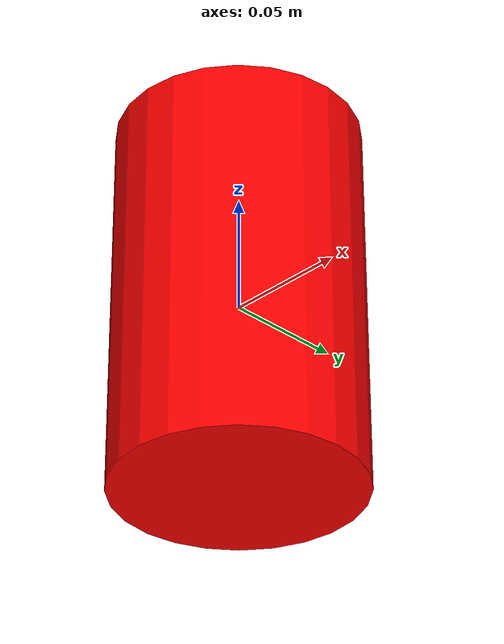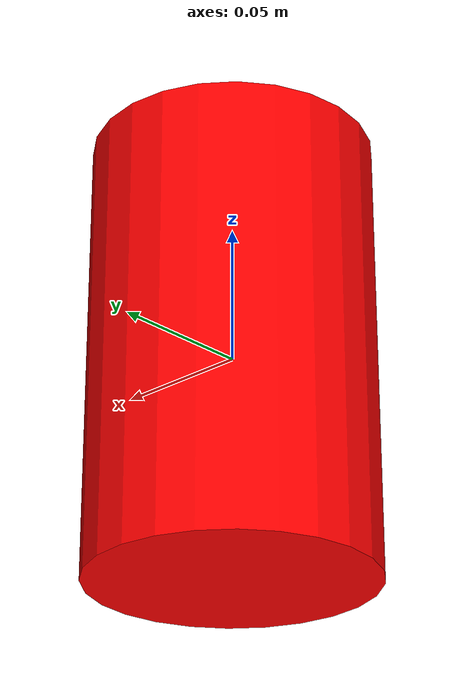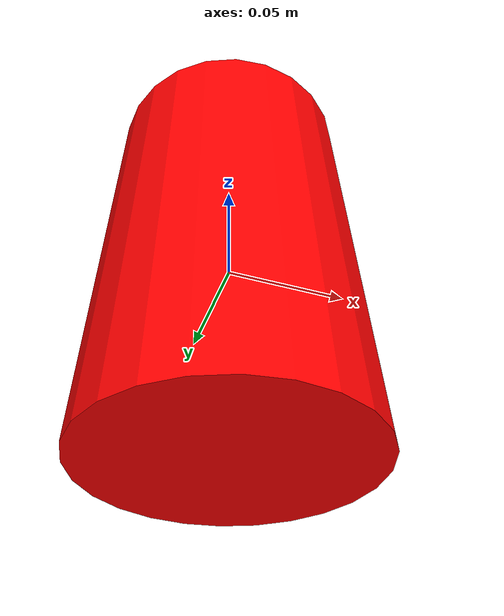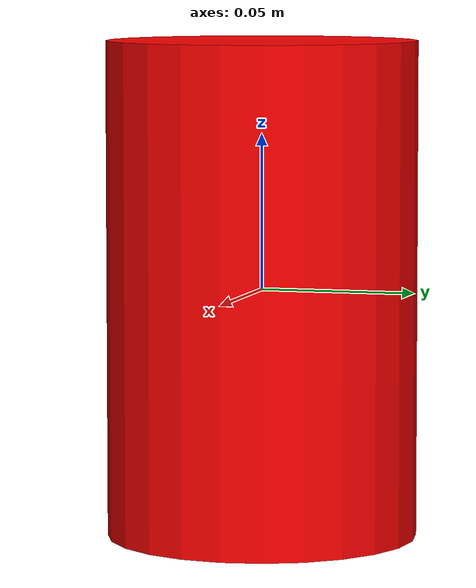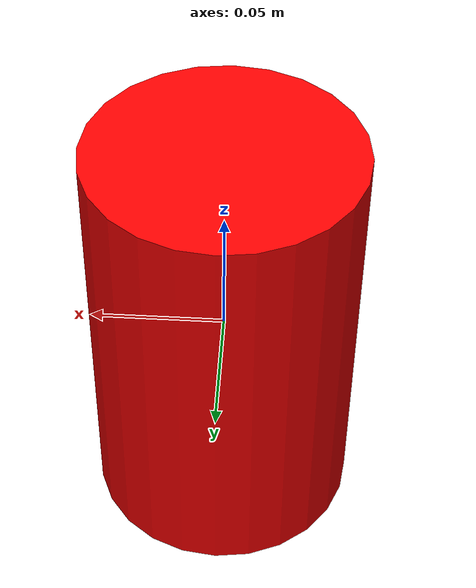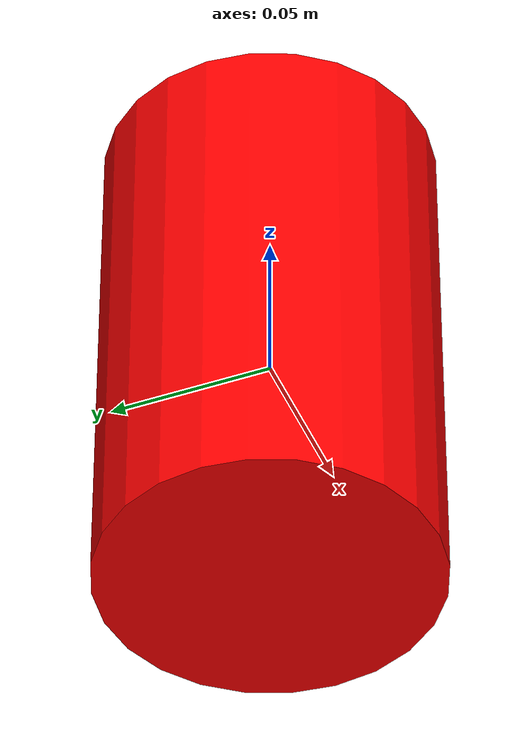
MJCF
<mujoco model="cylinder">
    <worldbody>
        <body name="collision">
            <!-- Size = Radius, Half-height -->
            <geom pos="0 0 0" size="0.05 0.08" type="cylinder" rgba="1 0 0 1"/>
        </body>
        <body name="visual">
            <geom pos="0 0 0" size="0.05 0.08" type="cylinder" rgba="1 0 0 1" conaffinity="0" contype="0" mass="0.0001" group="1"/>
            <geom pos="0 0 0" size="0.05 0.08" type="cylinder" rgba="1 0 0 1" conaffinity="0" contype="0" mass="0.0001" group="0"/>
        </body>
        <!-- These sites are for stacking objects, for aligning objects on a table for example. -->
        <site rgba="0 0 0 0" size="0.005" pos="0 0 -0.08" name="bottom_site"/>
        <site rgba="0 0 0 0" size="0.005" pos="0 0 0.08" name="top_site"/>
        <site rgba="0 0 0 0" size="0.005" pos="0.05 0 0" name="horizontal_radius_site"/>
    </worldbody>
</mujoco>
